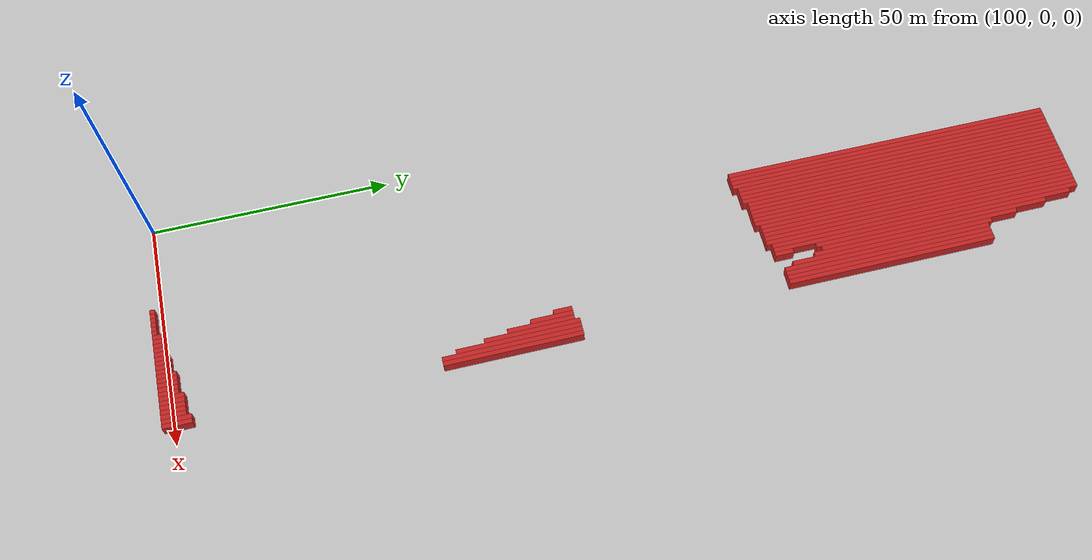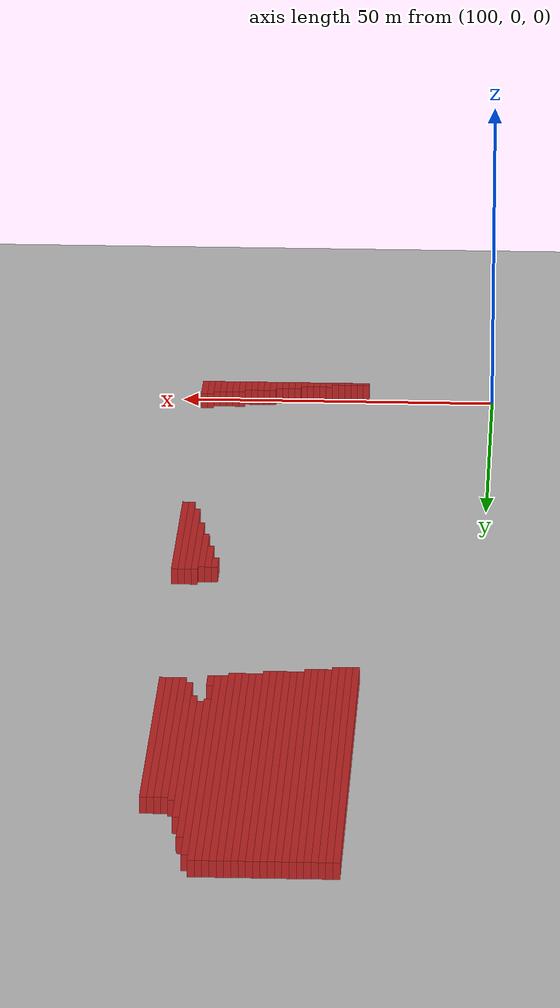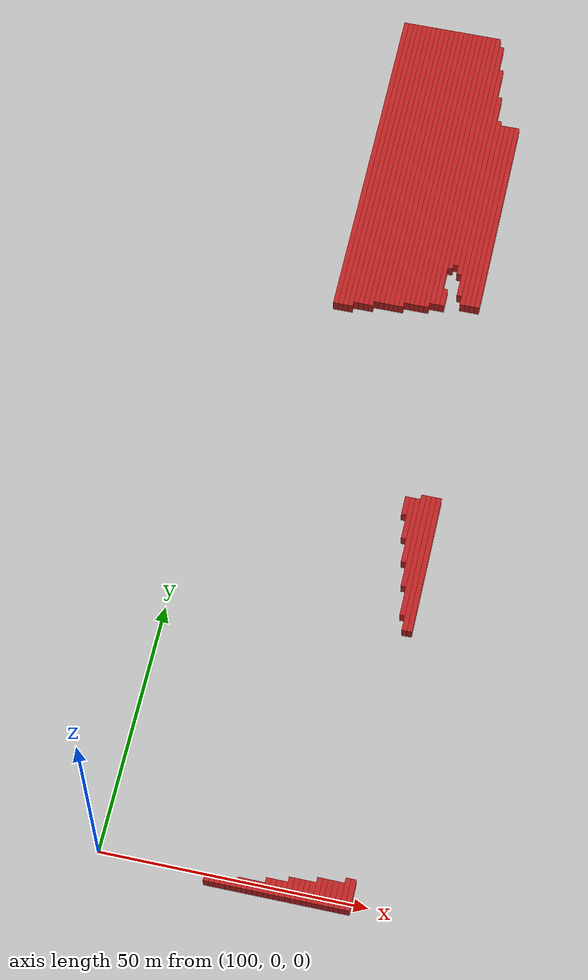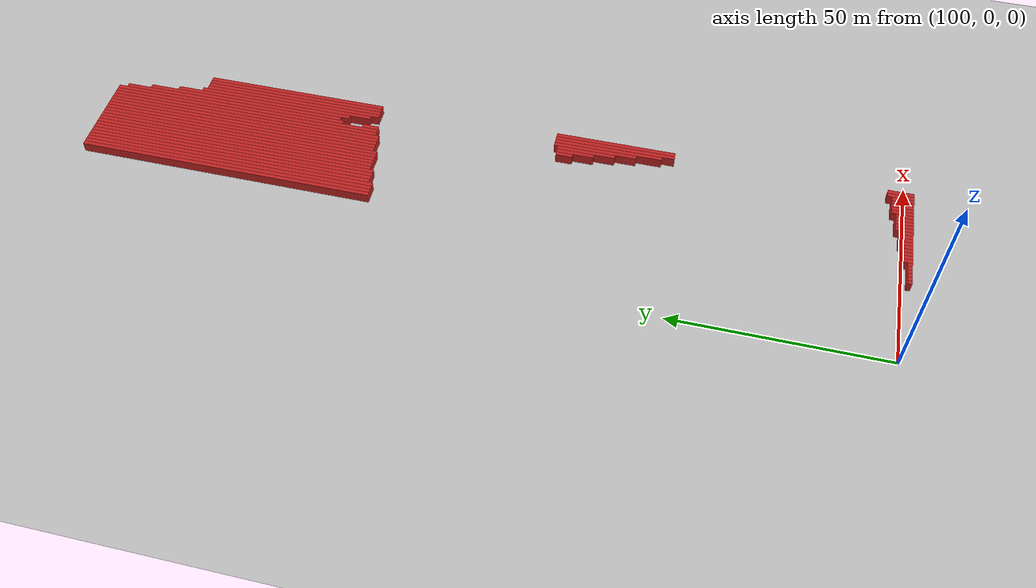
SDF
<sdf version="1.4">
 <world name="1_wall">
  <model name="ground_plane">
   <static>1</static>
   <link name="link">
    <collision name="collision">
     <geometry><plane><normal>0 0 1</normal><size>1000 1000</size></plane></geometry>
     <surface><friction><ode><mu>100</mu><mu2>50</mu2></ode></friction></surface>
    </collision>
    <visual name="visual">
     <cast_shadows>0</cast_shadows>
     <geometry><plane><normal>0 0 1</normal><size>10000 10000</size></plane></geometry>
     <material>
      <script><uri>file://media/materials/scripts/gazebo.material</uri><name>Gazebo/Grey</name></script>
     </material>
    </visual>
    <velocity_decay><linear>0</linear><angular>0</angular></velocity_decay>
   </link>
  </model>
  <model name="Wall_192">
   <static>1</static>
   <link name="Wall_192">
    <collision name="Wall_Collision_192">
     <geometry><box><size>72.0 1.0 2.5</size></box></geometry>
     <pose>0 0 1.25 0 -0 0</pose>
    </collision>
    <visual name="Wall_Visual_192">
     <pose>0 0 1.25 0 -0 0</pose>
     <geometry><box><size>72.0 1.0 2.5</size></box></geometry>
     <material>
      <script><uri>file://media/materials/scripts/gazebo.material</uri><name>Gazebo/Red</name></script>
     </material>
    </visual>
    <velocity_decay><linear>0</linear><angular>0</angular></velocity_decay>
    <pose>117.5 158.0 0 0 0 1.5707963267948966</pose>
   </link>
  </model>
  <model name="Wall_193">
   <static>1</static>
   <link name="Wall_193">
    <collision name="Wall_Collision_193">
     <geometry><box><size>72.0 1.0 2.5</size></box></geometry>
     <pose>0 0 1.25 0 -0 0</pose>
    </collision>
    <visual name="Wall_Visual_193">
     <pose>0 0 1.25 0 -0 0</pose>
     <geometry><box><size>72.0 1.0 2.5</size></box></geometry>
     <material>
      <script><uri>file://media/materials/scripts/gazebo.material</uri><name>Gazebo/Red</name></script>
     </material>
    </visual>
    <velocity_decay><linear>0</linear><angular>0</angular></velocity_decay>
    <pose>118.5 158.0 0 0 0 1.5707963267948966</pose>
   </link>
  </model>
  <model name="Wall_194">
   <static>1</static>
   <link name="Wall_194">
    <collision name="Wall_Collision_194">
     <geometry><box><size>72.0 1.0 2.5</size></box></geometry>
     <pose>0 0 1.25 0 -0 0</pose>
    </collision>
    <visual name="Wall_Visual_194">
     <pose>0 0 1.25 0 -0 0</pose>
     <geometry><box><size>72.0 1.0 2.5</size></box></geometry>
     <material>
      <script><uri>file://media/materials/scripts/gazebo.material</uri><name>Gazebo/Red</name></script>
     </material>
    </visual>
    <velocity_decay><linear>0</linear><angular>0</angular></velocity_decay>
    <pose>119.5 158.0 0 0 0 1.5707963267948966</pose>
   </link>
  </model>
  <model name="Wall_195">
   <static>1</static>
   <link name="Wall_195">
    <collision name="Wall_Collision_195">
     <geometry><box><size>1.0 1.0 2.5</size></box></geometry>
     <pose>0 0 1.25 0 -0 0</pose>
    </collision>
    <visual name="Wall_Visual_195">
     <pose>0 0 1.25 0 -0 0</pose>
     <geometry><box><size>1.0 1.0 2.5</size></box></geometry>
     <material>
      <script><uri>file://media/materials/scripts/gazebo.material</uri><name>Gazebo/Red</name></script>
     </material>
    </visual>
    <velocity_decay><linear>0</linear><angular>0</angular></velocity_decay>
    <pose>120.5 -1.5 0 0 0 1.5707963267948966</pose>
   </link>
  </model>
  <model name="Wall_196">
   <static>1</static>
   <link name="Wall_196">
    <collision name="Wall_Collision_196">
     <geometry><box><size>72.0 1.0 2.5</size></box></geometry>
     <pose>0 0 1.25 0 -0 0</pose>
    </collision>
    <visual name="Wall_Visual_196">
     <pose>0 0 1.25 0 -0 0</pose>
     <geometry><box><size>72.0 1.0 2.5</size></box></geometry>
     <material>
      <script><uri>file://media/materials/scripts/gazebo.material</uri><name>Gazebo/Red</name></script>
     </material>
    </visual>
    <velocity_decay><linear>0</linear><angular>0</angular></velocity_decay>
    <pose>120.5 158.0 0 0 0 1.5707963267948966</pose>
   </link>
  </model>
  <model name="Wall_197">
   <static>1</static>
   <link name="Wall_197">
    <collision name="Wall_Collision_197">
     <geometry><box><size>1.0 1.0 2.5</size></box></geometry>
     <pose>0 0 1.25 0 -0 0</pose>
    </collision>
    <visual name="Wall_Visual_197">
     <pose>0 0 1.25 0 -0 0</pose>
     <geometry><box><size>1.0 1.0 2.5</size></box></geometry>
     <material>
      <script><uri>file://media/materials/scripts/gazebo.material</uri><name>Gazebo/Red</name></script>
     </material>
    </visual>
    <velocity_decay><linear>0</linear><angular>0</angular></velocity_decay>
    <pose>121.5 -1.5 0 0 0 1.5707963267948966</pose>
   </link>
  </model>
  <model name="Wall_198">
   <static>1</static>
   <link name="Wall_198">
    <collision name="Wall_Collision_198">
     <geometry><box><size>71.0 1.0 2.5</size></box></geometry>
     <pose>0 0 1.25 0 -0 0</pose>
    </collision>
    <visual name="Wall_Visual_198">
     <pose>0 0 1.25 0 -0 0</pose>
     <geometry><box><size>71.0 1.0 2.5</size></box></geometry>
     <material>
      <script><uri>file://media/materials/scripts/gazebo.material</uri><name>Gazebo/Red</name></script>
     </material>
    </visual>
    <velocity_decay><linear>0</linear><angular>0</angular></velocity_decay>
    <pose>121.5 158.5 0 0 0 1.5707963267948966</pose>
   </link>
  </model>
  <model name="Wall_199">
   <static>1</static>
   <link name="Wall_199">
    <collision name="Wall_Collision_199">
     <geometry><box><size>1.0 1.0 2.5</size></box></geometry>
     <pose>0 0 1.25 0 -0 0</pose>
    </collision>
    <visual name="Wall_Visual_199">
     <pose>0 0 1.25 0 -0 0</pose>
     <geometry><box><size>1.0 1.0 2.5</size></box></geometry>
     <material>
      <script><uri>file://media/materials/scripts/gazebo.material</uri><name>Gazebo/Red</name></script>
     </material>
    </visual>
    <velocity_decay><linear>0</linear><angular>0</angular></velocity_decay>
    <pose>122.5 -1.5 0 0 0 1.5707963267948966</pose>
   </link>
  </model>
  <model name="Wall_200">
   <static>1</static>
   <link name="Wall_200">
    <collision name="Wall_Collision_200">
     <geometry><box><size>71.0 1.0 2.5</size></box></geometry>
     <pose>0 0 1.25 0 -0 0</pose>
    </collision>
    <visual name="Wall_Visual_200">
     <pose>0 0 1.25 0 -0 0</pose>
     <geometry><box><size>71.0 1.0 2.5</size></box></geometry>
     <material>
      <script><uri>file://media/materials/scripts/gazebo.material</uri><name>Gazebo/Red</name></script>
     </material>
    </visual>
    <velocity_decay><linear>0</linear><angular>0</angular></velocity_decay>
    <pose>122.5 158.5 0 0 0 1.5707963267948966</pose>
   </link>
  </model>
  <model name="Wall_201">
   <static>1</static>
   <link name="Wall_201">
    <collision name="Wall_Collision_201">
     <geometry><box><size>1.0 1.0 2.5</size></box></geometry>
     <pose>0 0 1.25 0 -0 0</pose>
    </collision>
    <visual name="Wall_Visual_201">
     <pose>0 0 1.25 0 -0 0</pose>
     <geometry><box><size>1.0 1.0 2.5</size></box></geometry>
     <material>
      <script><uri>file://media/materials/scripts/gazebo.material</uri><name>Gazebo/Red</name></script>
     </material>
    </visual>
    <velocity_decay><linear>0</linear><angular>0</angular></velocity_decay>
    <pose>123.5 -1.5 0 0 0 1.5707963267948966</pose>
   </link>
  </model>
  <model name="Wall_202">
   <static>1</static>
   <link name="Wall_202">
    <collision name="Wall_Collision_202">
     <geometry><box><size>71.0 1.0 2.5</size></box></geometry>
     <pose>0 0 1.25 0 -0 0</pose>
    </collision>
    <visual name="Wall_Visual_202">
     <pose>0 0 1.25 0 -0 0</pose>
     <geometry><box><size>71.0 1.0 2.5</size></box></geometry>
     <material>
      <script><uri>file://media/materials/scripts/gazebo.material</uri><name>Gazebo/Red</name></script>
     </material>
    </visual>
    <velocity_decay><linear>0</linear><angular>0</angular></velocity_decay>
    <pose>123.5 158.5 0 0 0 1.5707963267948966</pose>
   </link>
  </model>
  <model name="Wall_203">
   <static>1</static>
   <link name="Wall_203">
    <collision name="Wall_Collision_203">
     <geometry><box><size>1.0 1.0 2.5</size></box></geometry>
     <pose>0 0 1.25 0 -0 0</pose>
    </collision>
    <visual name="Wall_Visual_203">
     <pose>0 0 1.25 0 -0 0</pose>
     <geometry><box><size>1.0 1.0 2.5</size></box></geometry>
     <material>
      <script><uri>file://media/materials/scripts/gazebo.material</uri><name>Gazebo/Red</name></script>
     </material>
    </visual>
    <velocity_decay><linear>0</linear><angular>0</angular></velocity_decay>
    <pose>124.5 -1.5 0 0 0 1.5707963267948966</pose>
   </link>
  </model>
  <model name="Wall_204">
   <static>1</static>
   <link name="Wall_204">
    <collision name="Wall_Collision_204">
     <geometry><box><size>71.0 1.0 2.5</size></box></geometry>
     <pose>0 0 1.25 0 -0 0</pose>
    </collision>
    <visual name="Wall_Visual_204">
     <pose>0 0 1.25 0 -0 0</pose>
     <geometry><box><size>71.0 1.0 2.5</size></box></geometry>
     <material>
      <script><uri>file://media/materials/scripts/gazebo.material</uri><name>Gazebo/Red</name></script>
     </material>
    </visual>
    <velocity_decay><linear>0</linear><angular>0</angular></velocity_decay>
    <pose>124.5 158.5 0 0 0 1.5707963267948966</pose>
   </link>
  </model>
  <model name="Wall_205">
   <static>1</static>
   <link name="Wall_205">
    <collision name="Wall_Collision_205">
     <geometry><box><size>1.0 1.0 2.5</size></box></geometry>
     <pose>0 0 1.25 0 -0 0</pose>
    </collision>
    <visual name="Wall_Visual_205">
     <pose>0 0 1.25 0 -0 0</pose>
     <geometry><box><size>1.0 1.0 2.5</size></box></geometry>
     <material>
      <script><uri>file://media/materials/scripts/gazebo.material</uri><name>Gazebo/Red</name></script>
     </material>
    </visual>
    <velocity_decay><linear>0</linear><angular>0</angular></velocity_decay>
    <pose>125.5 -1.5 0 0 0 1.5707963267948966</pose>
   </link>
  </model>
  <model name="Wall_206">
   <static>1</static>
   <link name="Wall_206">
    <collision name="Wall_Collision_206">
     <geometry><box><size>70.0 1.0 2.5</size></box></geometry>
     <pose>0 0 1.25 0 -0 0</pose>
    </collision>
    <visual name="Wall_Visual_206">
     <pose>0 0 1.25 0 -0 0</pose>
     <geometry><box><size>70.0 1.0 2.5</size></box></geometry>
     <material>
      <script><uri>file://media/materials/scripts/gazebo.material</uri><name>Gazebo/Red</name></script>
     </material>
    </visual>
    <velocity_decay><linear>0</linear><angular>0</angular></velocity_decay>
    <pose>125.5 159.0 0 0 0 1.5707963267948966</pose>
   </link>
  </model>
  <model name="Wall_207">
   <static>1</static>
   <link name="Wall_207">
    <collision name="Wall_Collision_207">
     <geometry><box><size>2.0 1.0 2.5</size></box></geometry>
     <pose>0 0 1.25 0 -0 0</pose>
    </collision>
    <visual name="Wall_Visual_207">
     <pose>0 0 1.25 0 -0 0</pose>
     <geometry><box><size>2.0 1.0 2.5</size></box></geometry>
     <material>
      <script><uri>file://media/materials/scripts/gazebo.material</uri><name>Gazebo/Red</name></script>
     </material>
    </visual>
    <velocity_decay><linear>0</linear><angular>0</angular></velocity_decay>
    <pose>126.5 -1.0 0 0 0 1.5707963267948966</pose>
   </link>
  </model>
  <model name="Wall_208">
   <static>1</static>
   <link name="Wall_208">
    <collision name="Wall_Collision_208">
     <geometry><box><size>70.0 1.0 2.5</size></box></geometry>
     <pose>0 0 1.25 0 -0 0</pose>
    </collision>
    <visual name="Wall_Visual_208">
     <pose>0 0 1.25 0 -0 0</pose>
     <geometry><box><size>70.0 1.0 2.5</size></box></geometry>
     <material>
      <script><uri>file://media/materials/scripts/gazebo.material</uri><name>Gazebo/Red</name></script>
     </material>
    </visual>
    <velocity_decay><linear>0</linear><angular>0</angular></velocity_decay>
    <pose>126.5 159.0 0 0 0 1.5707963267948966</pose>
   </link>
  </model>
  <model name="Wall_209">
   <static>1</static>
   <link name="Wall_209">
    <collision name="Wall_Collision_209">
     <geometry><box><size>2.0 1.0 2.5</size></box></geometry>
     <pose>0 0 1.25 0 -0 0</pose>
    </collision>
    <visual name="Wall_Visual_209">
     <pose>0 0 1.25 0 -0 0</pose>
     <geometry><box><size>2.0 1.0 2.5</size></box></geometry>
     <material>
      <script><uri>file://media/materials/scripts/gazebo.material</uri><name>Gazebo/Red</name></script>
     </material>
    </visual>
    <velocity_decay><linear>0</linear><angular>0</angular></velocity_decay>
    <pose>127.5 -1.0 0 0 0 1.5707963267948966</pose>
   </link>
  </model>
  <model name="Wall_210">
   <static>1</static>
   <link name="Wall_210">
    <collision name="Wall_Collision_210">
     <geometry><box><size>70.0 1.0 2.5</size></box></geometry>
     <pose>0 0 1.25 0 -0 0</pose>
    </collision>
    <visual name="Wall_Visual_210">
     <pose>0 0 1.25 0 -0 0</pose>
     <geometry><box><size>70.0 1.0 2.5</size></box></geometry>
     <material>
      <script><uri>file://media/materials/scripts/gazebo.material</uri><name>Gazebo/Red</name></script>
     </material>
    </visual>
    <velocity_decay><linear>0</linear><angular>0</angular></velocity_decay>
    <pose>127.5 159.0 0 0 0 1.5707963267948966</pose>
   </link>
  </model>
  <model name="Wall_211">
   <static>1</static>
   <link name="Wall_211">
    <collision name="Wall_Collision_211">
     <geometry><box><size>2.0 1.0 2.5</size></box></geometry>
     <pose>0 0 1.25 0 -0 0</pose>
    </collision>
    <visual name="Wall_Visual_211">
     <pose>0 0 1.25 0 -0 0</pose>
     <geometry><box><size>2.0 1.0 2.5</size></box></geometry>
     <material>
      <script><uri>file://media/materials/scripts/gazebo.material</uri><name>Gazebo/Red</name></script>
     </material>
    </visual>
    <velocity_decay><linear>0</linear><angular>0</angular></velocity_decay>
    <pose>128.5 -1.0 0 0 0 1.5707963267948966</pose>
   </link>
  </model>
  <model name="Wall_212">
   <static>1</static>
   <link name="Wall_212">
    <collision name="Wall_Collision_212">
     <geometry><box><size>70.0 1.0 2.5</size></box></geometry>
     <pose>0 0 1.25 0 -0 0</pose>
    </collision>
    <visual name="Wall_Visual_212">
     <pose>0 0 1.25 0 -0 0</pose>
     <geometry><box><size>70.0 1.0 2.5</size></box></geometry>
     <material>
      <script><uri>file://media/materials/scripts/gazebo.material</uri><name>Gazebo/Red</name></script>
     </material>
    </visual>
    <velocity_decay><linear>0</linear><angular>0</angular></velocity_decay>
    <pose>128.5 159.0 0 0 0 1.5707963267948966</pose>
   </link>
  </model>
  <model name="Wall_213">
   <static>1</static>
   <link name="Wall_213">
    <collision name="Wall_Collision_213">
     <geometry><box><size>2.0 1.0 2.5</size></box></geometry>
     <pose>0 0 1.25 0 -0 0</pose>
    </collision>
    <visual name="Wall_Visual_213">
     <pose>0 0 1.25 0 -0 0</pose>
     <geometry><box><size>2.0 1.0 2.5</size></box></geometry>
     <material>
      <script><uri>file://media/materials/scripts/gazebo.material</uri><name>Gazebo/Red</name></script>
     </material>
    </visual>
    <velocity_decay><linear>0</linear><angular>0</angular></velocity_decay>
    <pose>129.5 -1.0 0 0 0 1.5707963267948966</pose>
   </link>
  </model>
  <model name="Wall_214">
   <static>1</static>
   <link name="Wall_214">
    <collision name="Wall_Collision_214">
     <geometry><box><size>70.0 1.0 2.5</size></box></geometry>
     <pose>0 0 1.25 0 -0 0</pose>
    </collision>
    <visual name="Wall_Visual_214">
     <pose>0 0 1.25 0 -0 0</pose>
     <geometry><box><size>70.0 1.0 2.5</size></box></geometry>
     <material>
      <script><uri>file://media/materials/scripts/gazebo.material</uri><name>Gazebo/Red</name></script>
     </material>
    </visual>
    <velocity_decay><linear>0</linear><angular>0</angular></velocity_decay>
    <pose>129.5 159.0 0 0 0 1.5707963267948966</pose>
   </link>
  </model>
  <model name="Wall_215">
   <static>1</static>
   <link name="Wall_215">
    <collision name="Wall_Collision_215">
     <geometry><box><size>2.0 1.0 2.5</size></box></geometry>
     <pose>0 0 1.25 0 -0 0</pose>
    </collision>
    <visual name="Wall_Visual_215">
     <pose>0 0 1.25 0 -0 0</pose>
     <geometry><box><size>2.0 1.0 2.5</size></box></geometry>
     <material>
      <script><uri>file://media/materials/scripts/gazebo.material</uri><name>Gazebo/Red</name></script>
     </material>
    </visual>
    <velocity_decay><linear>0</linear><angular>0</angular></velocity_decay>
    <pose>130.5 -1.0 0 0 0 1.5707963267948966</pose>
   </link>
  </model>
  <model name="Wall_216">
   <static>1</static>
   <link name="Wall_216">
    <collision name="Wall_Collision_216">
     <geometry><box><size>70.0 1.0 2.5</size></box></geometry>
     <pose>0 0 1.25 0 -0 0</pose>
    </collision>
    <visual name="Wall_Visual_216">
     <pose>0 0 1.25 0 -0 0</pose>
     <geometry><box><size>70.0 1.0 2.5</size></box></geometry>
     <material>
      <script><uri>file://media/materials/scripts/gazebo.material</uri><name>Gazebo/Red</name></script>
     </material>
    </visual>
    <velocity_decay><linear>0</linear><angular>0</angular></velocity_decay>
    <pose>130.5 159.0 0 0 0 1.5707963267948966</pose>
   </link>
  </model>
  <model name="Wall_217">
   <static>1</static>
   <link name="Wall_217">
    <collision name="Wall_Collision_217">
     <geometry><box><size>3.0 1.0 2.5</size></box></geometry>
     <pose>0 0 1.25 0 -0 0</pose>
    </collision>
    <visual name="Wall_Visual_217">
     <pose>0 0 1.25 0 -0 0</pose>
     <geometry><box><size>3.0 1.0 2.5</size></box></geometry>
     <material>
      <script><uri>file://media/materials/scripts/gazebo.material</uri><name>Gazebo/Red</name></script>
     </material>
    </visual>
    <velocity_decay><linear>0</linear><angular>0</angular></velocity_decay>
    <pose>131.5 -0.5 0 0 0 1.5707963267948966</pose>
   </link>
  </model>
  <model name="Wall_218">
   <static>1</static>
   <link name="Wall_218">
    <collision name="Wall_Collision_218">
     <geometry><box><size>69.0 1.0 2.5</size></box></geometry>
     <pose>0 0 1.25 0 -0 0</pose>
    </collision>
    <visual name="Wall_Visual_218">
     <pose>0 0 1.25 0 -0 0</pose>
     <geometry><box><size>69.0 1.0 2.5</size></box></geometry>
     <material>
      <script><uri>file://media/materials/scripts/gazebo.material</uri><name>Gazebo/Red</name></script>
     </material>
    </visual>
    <velocity_decay><linear>0</linear><angular>0</angular></velocity_decay>
    <pose>131.5 159.5 0 0 0 1.5707963267948966</pose>
   </link>
  </model>
  <model name="Wall_219">
   <static>1</static>
   <link name="Wall_219">
    <collision name="Wall_Collision_219">
     <geometry><box><size>3.0 1.0 2.5</size></box></geometry>
     <pose>0 0 1.25 0 -0 0</pose>
    </collision>
    <visual name="Wall_Visual_219">
     <pose>0 0 1.25 0 -0 0</pose>
     <geometry><box><size>3.0 1.0 2.5</size></box></geometry>
     <material>
      <script><uri>file://media/materials/scripts/gazebo.material</uri><name>Gazebo/Red</name></script>
     </material>
    </visual>
    <velocity_decay><linear>0</linear><angular>0</angular></velocity_decay>
    <pose>132.5 -0.5 0 0 0 1.5707963267948966</pose>
   </link>
  </model>
  <model name="Wall_220">
   <static>1</static>
   <link name="Wall_220">
    <collision name="Wall_Collision_220">
     <geometry><box><size>69.0 1.0 2.5</size></box></geometry>
     <pose>0 0 1.25 0 -0 0</pose>
    </collision>
    <visual name="Wall_Visual_220">
     <pose>0 0 1.25 0 -0 0</pose>
     <geometry><box><size>69.0 1.0 2.5</size></box></geometry>
     <material>
      <script><uri>file://media/materials/scripts/gazebo.material</uri><name>Gazebo/Red</name></script>
     </material>
    </visual>
    <velocity_decay><linear>0</linear><angular>0</angular></velocity_decay>
    <pose>132.5 159.5 0 0 0 1.5707963267948966</pose>
   </link>
  </model>
  <model name="Wall_221">
   <static>1</static>
   <link name="Wall_221">
    <collision name="Wall_Collision_221">
     <geometry><box><size>3.0 1.0 2.5</size></box></geometry>
     <pose>0 0 1.25 0 -0 0</pose>
    </collision>
    <visual name="Wall_Visual_221">
     <pose>0 0 1.25 0 -0 0</pose>
     <geometry><box><size>3.0 1.0 2.5</size></box></geometry>
     <material>
      <script><uri>file://media/materials/scripts/gazebo.material</uri><name>Gazebo/Red</name></script>
     </material>
    </visual>
    <velocity_decay><linear>0</linear><angular>0</angular></velocity_decay>
    <pose>133.5 -0.5 0 0 0 1.5707963267948966</pose>
   </link>
  </model>
  <model name="Wall_222">
   <static>1</static>
   <link name="Wall_222">
    <collision name="Wall_Collision_222">
     <geometry><box><size>69.0 1.0 2.5</size></box></geometry>
     <pose>0 0 1.25 0 -0 0</pose>
    </collision>
    <visual name="Wall_Visual_222">
     <pose>0 0 1.25 0 -0 0</pose>
     <geometry><box><size>69.0 1.0 2.5</size></box></geometry>
     <material>
      <script><uri>file://media/materials/scripts/gazebo.material</uri><name>Gazebo/Red</name></script>
     </material>
    </visual>
    <velocity_decay><linear>0</linear><angular>0</angular></velocity_decay>
    <pose>133.5 159.5 0 0 0 1.5707963267948966</pose>
   </link>
  </model>
  <model name="Wall_223">
   <static>1</static>
   <link name="Wall_223">
    <collision name="Wall_Collision_223">
     <geometry><box><size>3.0 1.0 2.5</size></box></geometry>
     <pose>0 0 1.25 0 -0 0</pose>
    </collision>
    <visual name="Wall_Visual_223">
     <pose>0 0 1.25 0 -0 0</pose>
     <geometry><box><size>3.0 1.0 2.5</size></box></geometry>
     <material>
      <script><uri>file://media/materials/scripts/gazebo.material</uri><name>Gazebo/Red</name></script>
     </material>
    </visual>
    <velocity_decay><linear>0</linear><angular>0</angular></velocity_decay>
    <pose>134.5 -0.5 0 0 0 1.5707963267948966</pose>
   </link>
  </model>
  <model name="Wall_224">
   <static>1</static>
   <link name="Wall_224">
    <collision name="Wall_Collision_224">
     <geometry><box><size>69.0 1.0 2.5</size></box></geometry>
     <pose>0 0 1.25 0 -0 0</pose>
    </collision>
    <visual name="Wall_Visual_224">
     <pose>0 0 1.25 0 -0 0</pose>
     <geometry><box><size>69.0 1.0 2.5</size></box></geometry>
     <material>
      <script><uri>file://media/materials/scripts/gazebo.material</uri><name>Gazebo/Red</name></script>
     </material>
    </visual>
    <velocity_decay><linear>0</linear><angular>0</angular></velocity_decay>
    <pose>134.5 159.5 0 0 0 1.5707963267948966</pose>
   </link>
  </model>
  <model name="Wall_225">
   <static>1</static>
   <link name="Wall_225">
    <collision name="Wall_Collision_225">
     <geometry><box><size>4.0 1.0 2.5</size></box></geometry>
     <pose>0 0 1.25 0 -0 0</pose>
    </collision>
    <visual name="Wall_Visual_225">
     <pose>0 0 1.25 0 -0 0</pose>
     <geometry><box><size>4.0 1.0 2.5</size></box></geometry>
     <material>
      <script><uri>file://media/materials/scripts/gazebo.material</uri><name>Gazebo/Red</name></script>
     </material>
    </visual>
    <velocity_decay><linear>0</linear><angular>0</angular></velocity_decay>
    <pose>135.5 0.0 0 0 0 1.5707963267948966</pose>
   </link>
  </model>
  <model name="Wall_226">
   <static>1</static>
   <link name="Wall_226">
    <collision name="Wall_Collision_226">
     <geometry><box><size>69.0 1.0 2.5</size></box></geometry>
     <pose>0 0 1.25 0 -0 0</pose>
    </collision>
    <visual name="Wall_Visual_226">
     <pose>0 0 1.25 0 -0 0</pose>
     <geometry><box><size>69.0 1.0 2.5</size></box></geometry>
     <material>
      <script><uri>file://media/materials/scripts/gazebo.material</uri><name>Gazebo/Red</name></script>
     </material>
    </visual>
    <velocity_decay><linear>0</linear><angular>0</angular></velocity_decay>
    <pose>135.5 159.5 0 0 0 1.5707963267948966</pose>
   </link>
  </model>
  <model name="Wall_227">
   <static>1</static>
   <link name="Wall_227">
    <collision name="Wall_Collision_227">
     <geometry><box><size>4.0 1.0 2.5</size></box></geometry>
     <pose>0 0 1.25 0 -0 0</pose>
    </collision>
    <visual name="Wall_Visual_227">
     <pose>0 0 1.25 0 -0 0</pose>
     <geometry><box><size>4.0 1.0 2.5</size></box></geometry>
     <material>
      <script><uri>file://media/materials/scripts/gazebo.material</uri><name>Gazebo/Red</name></script>
     </material>
    </visual>
    <velocity_decay><linear>0</linear><angular>0</angular></velocity_decay>
    <pose>136.5 0.0 0 0 0 1.5707963267948966</pose>
   </link>
  </model>
  <model name="Wall_228">
   <static>1</static>
   <link name="Wall_228">
    <collision name="Wall_Collision_228">
     <geometry><box><size>68.0 1.0 2.5</size></box></geometry>
     <pose>0 0 1.25 0 -0 0</pose>
    </collision>
    <visual name="Wall_Visual_228">
     <pose>0 0 1.25 0 -0 0</pose>
     <geometry><box><size>68.0 1.0 2.5</size></box></geometry>
     <material>
      <script><uri>file://media/materials/scripts/gazebo.material</uri><name>Gazebo/Red</name></script>
     </material>
    </visual>
    <velocity_decay><linear>0</linear><angular>0</angular></velocity_decay>
    <pose>136.5 160.0 0 0 0 1.5707963267948966</pose>
   </link>
  </model>
  <model name="Wall_229">
   <static>1</static>
   <link name="Wall_229">
    <collision name="Wall_Collision_229">
     <geometry><box><size>4.0 1.0 2.5</size></box></geometry>
     <pose>0 0 1.25 0 -0 0</pose>
    </collision>
    <visual name="Wall_Visual_229">
     <pose>0 0 1.25 0 -0 0</pose>
     <geometry><box><size>4.0 1.0 2.5</size></box></geometry>
     <material>
      <script><uri>file://media/materials/scripts/gazebo.material</uri><name>Gazebo/Red</name></script>
     </material>
    </visual>
    <velocity_decay><linear>0</linear><angular>0</angular></velocity_decay>
    <pose>137.5 0.0 0 0 0 1.5707963267948966</pose>
   </link>
  </model>
  <model name="Wall_230">
   <static>1</static>
   <link name="Wall_230">
    <collision name="Wall_Collision_230">
     <geometry><box><size>68.0 1.0 2.5</size></box></geometry>
     <pose>0 0 1.25 0 -0 0</pose>
    </collision>
    <visual name="Wall_Visual_230">
     <pose>0 0 1.25 0 -0 0</pose>
     <geometry><box><size>68.0 1.0 2.5</size></box></geometry>
     <material>
      <script><uri>file://media/materials/scripts/gazebo.material</uri><name>Gazebo/Red</name></script>
     </material>
    </visual>
    <velocity_decay><linear>0</linear><angular>0</angular></velocity_decay>
    <pose>137.5 160.0 0 0 0 1.5707963267948966</pose>
   </link>
  </model>
  <model name="Wall_231">
   <static>1</static>
   <link name="Wall_231">
    <collision name="Wall_Collision_231">
     <geometry><box><size>4.0 1.0 2.5</size></box></geometry>
     <pose>0 0 1.25 0 -0 0</pose>
    </collision>
    <visual name="Wall_Visual_231">
     <pose>0 0 1.25 0 -0 0</pose>
     <geometry><box><size>4.0 1.0 2.5</size></box></geometry>
     <material>
      <script><uri>file://media/materials/scripts/gazebo.material</uri><name>Gazebo/Red</name></script>
     </material>
    </visual>
    <velocity_decay><linear>0</linear><angular>0</angular></velocity_decay>
    <pose>138.5 0.0 0 0 0 1.5707963267948966</pose>
   </link>
  </model>
  <model name="Wall_232">
   <static>1</static>
   <link name="Wall_232">
    <collision name="Wall_Collision_232">
     <geometry><box><size>4.0 1.0 2.5</size></box></geometry>
     <pose>0 0 1.25 0 -0 0</pose>
    </collision>
    <visual name="Wall_Visual_232">
     <pose>0 0 1.25 0 -0 0</pose>
     <geometry><box><size>4.0 1.0 2.5</size></box></geometry>
     <material>
      <script><uri>file://media/materials/scripts/gazebo.material</uri><name>Gazebo/Red</name></script>
     </material>
    </visual>
    <velocity_decay><linear>0</linear><angular>0</angular></velocity_decay>
    <pose>138.5 128.0 0 0 0 1.5707963267948966</pose>
   </link>
  </model>
  <model name="Wall_233">
   <static>1</static>
   <link name="Wall_233">
    <collision name="Wall_Collision_233">
     <geometry><box><size>57.0 1.0 2.5</size></box></geometry>
     <pose>0 0 1.25 0 -0 0</pose>
    </collision>
    <visual name="Wall_Visual_233">
     <pose>0 0 1.25 0 -0 0</pose>
     <geometry><box><size>57.0 1.0 2.5</size></box></geometry>
     <material>
      <script><uri>file://media/materials/scripts/gazebo.material</uri><name>Gazebo/Red</name></script>
     </material>
    </visual>
    <velocity_decay><linear>0</linear><angular>0</angular></velocity_decay>
    <pose>138.5 163.5 0 0 0 1.5707963267948966</pose>
   </link>
  </model>
  <model name="Wall_234">
   <static>1</static>
   <link name="Wall_234">
    <collision name="Wall_Collision_234">
     <geometry><box><size>4.0 1.0 2.5</size></box></geometry>
     <pose>0 0 1.25 0 -0 0</pose>
    </collision>
    <visual name="Wall_Visual_234">
     <pose>0 0 1.25 0 -0 0</pose>
     <geometry><box><size>4.0 1.0 2.5</size></box></geometry>
     <material>
      <script><uri>file://media/materials/scripts/gazebo.material</uri><name>Gazebo/Red</name></script>
     </material>
    </visual>
    <velocity_decay><linear>0</linear><angular>0</angular></velocity_decay>
    <pose>139.5 0.0 0 0 0 1.5707963267948966</pose>
   </link>
  </model>
  <model name="Wall_235">
   <static>1</static>
   <link name="Wall_235">
    <collision name="Wall_Collision_235">
     <geometry><box><size>50.0 1.0 2.5</size></box></geometry>
     <pose>0 0 1.25 0 -0 0</pose>
    </collision>
    <visual name="Wall_Visual_235">
     <pose>0 0 1.25 0 -0 0</pose>
     <geometry><box><size>50.0 1.0 2.5</size></box></geometry>
     <material>
      <script><uri>file://media/materials/scripts/gazebo.material</uri><name>Gazebo/Red</name></script>
     </material>
    </visual>
    <velocity_decay><linear>0</linear><angular>0</angular></velocity_decay>
    <pose>139.5 161.0 0 0 0 1.5707963267948966</pose>
   </link>
  </model>
  <model name="Wall_236">
   <static>1</static>
   <link name="Wall_236">
    <collision name="Wall_Collision_236">
     <geometry><box><size>5.0 1.0 2.5</size></box></geometry>
     <pose>0 0 1.25 0 -0 0</pose>
    </collision>
    <visual name="Wall_Visual_236">
     <pose>0 0 1.25 0 -0 0</pose>
     <geometry><box><size>5.0 1.0 2.5</size></box></geometry>
     <material>
      <script><uri>file://media/materials/scripts/gazebo.material</uri><name>Gazebo/Red</name></script>
     </material>
    </visual>
    <velocity_decay><linear>0</linear><angular>0</angular></velocity_decay>
    <pose>140.5 0.5 0 0 0 1.5707963267948966</pose>
   </link>
  </model>
  <model name="Wall_237">
   <static>1</static>
   <link name="Wall_237">
    <collision name="Wall_Collision_237">
     <geometry><box><size>4.0 1.0 2.5</size></box></geometry>
     <pose>0 0 1.25 0 -0 0</pose>
    </collision>
    <visual name="Wall_Visual_237">
     <pose>0 0 1.25 0 -0 0</pose>
     <geometry><box><size>4.0 1.0 2.5</size></box></geometry>
     <material>
      <script><uri>file://media/materials/scripts/gazebo.material</uri><name>Gazebo/Red</name></script>
     </material>
    </visual>
    <velocity_decay><linear>0</linear><angular>0</angular></velocity_decay>
    <pose>140.5 80.0 0 0 0 1.5707963267948966</pose>
   </link>
  </model>
  <model name="Wall_238">
   <static>1</static>
   <link name="Wall_238">
    <collision name="Wall_Collision_238">
     <geometry><box><size>45.0 1.0 2.5</size></box></geometry>
     <pose>0 0 1.25 0 -0 0</pose>
    </collision>
    <visual name="Wall_Visual_238">
     <pose>0 0 1.25 0 -0 0</pose>
     <geometry><box><size>45.0 1.0 2.5</size></box></geometry>
     <material>
      <script><uri>file://media/materials/scripts/gazebo.material</uri><name>Gazebo/Red</name></script>
     </material>
    </visual>
    <velocity_decay><linear>0</linear><angular>0</angular></velocity_decay>
    <pose>140.5 156.5 0 0 0 1.5707963267948966</pose>
   </link>
  </model>
  <model name="Wall_239">
   <static>1</static>
   <link name="Wall_239">
    <collision name="Wall_Collision_239">
     <geometry><box><size>5.0 1.0 2.5</size></box></geometry>
     <pose>0 0 1.25 0 -0 0</pose>
    </collision>
    <visual name="Wall_Visual_239">
     <pose>0 0 1.25 0 -0 0</pose>
     <geometry><box><size>5.0 1.0 2.5</size></box></geometry>
     <material>
      <script><uri>file://media/materials/scripts/gazebo.material</uri><name>Gazebo/Red</name></script>
     </material>
    </visual>
    <velocity_decay><linear>0</linear><angular>0</angular></velocity_decay>
    <pose>141.5 0.5 0 0 0 1.5707963267948966</pose>
   </link>
  </model>
  <model name="Wall_240">
   <static>1</static>
   <link name="Wall_240">
    <collision name="Wall_Collision_240">
     <geometry><box><size>9.0 1.0 2.5</size></box></geometry>
     <pose>0 0 1.25 0 -0 0</pose>
    </collision>
    <visual name="Wall_Visual_240">
     <pose>0 0 1.25 0 -0 0</pose>
     <geometry><box><size>9.0 1.0 2.5</size></box></geometry>
     <material>
      <script><uri>file://media/materials/scripts/gazebo.material</uri><name>Gazebo/Red</name></script>
     </material>
    </visual>
    <velocity_decay><linear>0</linear><angular>0</angular></velocity_decay>
    <pose>141.5 77.5 0 0 0 1.5707963267948966</pose>
   </link>
  </model>
  <model name="Wall_241">
   <static>1</static>
   <link name="Wall_241">
    <collision name="Wall_Collision_241">
     <geometry><box><size>44.0 1.0 2.5</size></box></geometry>
     <pose>0 0 1.25 0 -0 0</pose>
    </collision>
    <visual name="Wall_Visual_241">
     <pose>0 0 1.25 0 -0 0</pose>
     <geometry><box><size>44.0 1.0 2.5</size></box></geometry>
     <material>
      <script><uri>file://media/materials/scripts/gazebo.material</uri><name>Gazebo/Red</name></script>
     </material>
    </visual>
    <velocity_decay><linear>0</linear><angular>0</angular></velocity_decay>
    <pose>141.5 151.0 0 0 0 1.5707963267948966</pose>
   </link>
  </model>
  <model name="Wall_242">
   <static>1</static>
   <link name="Wall_242">
    <collision name="Wall_Collision_242">
     <geometry><box><size>5.0 1.0 2.5</size></box></geometry>
     <pose>0 0 1.25 0 -0 0</pose>
    </collision>
    <visual name="Wall_Visual_242">
     <pose>0 0 1.25 0 -0 0</pose>
     <geometry><box><size>5.0 1.0 2.5</size></box></geometry>
     <material>
      <script><uri>file://media/materials/scripts/gazebo.material</uri><name>Gazebo/Red</name></script>
     </material>
    </visual>
    <velocity_decay><linear>0</linear><angular>0</angular></velocity_decay>
    <pose>142.5 0.5 0 0 0 1.5707963267948966</pose>
   </link>
  </model>
  <model name="Wall_243">
   <static>1</static>
   <link name="Wall_243">
    <collision name="Wall_Collision_243">
     <geometry><box><size>14.0 1.0 2.5</size></box></geometry>
     <pose>0 0 1.25 0 -0 0</pose>
    </collision>
    <visual name="Wall_Visual_243">
     <pose>0 0 1.25 0 -0 0</pose>
     <geometry><box><size>14.0 1.0 2.5</size></box></geometry>
     <material>
      <script><uri>file://media/materials/scripts/gazebo.material</uri><name>Gazebo/Red</name></script>
     </material>
    </visual>
    <velocity_decay><linear>0</linear><angular>0</angular></velocity_decay>
    <pose>142.5 75.0 0 0 0 1.5707963267948966</pose>
   </link>
  </model>
  <model name="Wall_244">
   <static>1</static>
   <link name="Wall_244">
    <collision name="Wall_Collision_244">
     <geometry><box><size>45.0 1.0 2.5</size></box></geometry>
     <pose>0 0 1.25 0 -0 0</pose>
    </collision>
    <visual name="Wall_Visual_244">
     <pose>0 0 1.25 0 -0 0</pose>
     <geometry><box><size>45.0 1.0 2.5</size></box></geometry>
     <material>
      <script><uri>file://media/materials/scripts/gazebo.material</uri><name>Gazebo/Red</name></script>
     </material>
    </visual>
    <velocity_decay><linear>0</linear><angular>0</angular></velocity_decay>
    <pose>142.5 149.5 0 0 0 1.5707963267948966</pose>
   </link>
  </model>
  <model name="Wall_245">
   <static>1</static>
   <link name="Wall_245">
    <collision name="Wall_Collision_245">
     <geometry><box><size>5.0 1.0 2.5</size></box></geometry>
     <pose>0 0 1.25 0 -0 0</pose>
    </collision>
    <visual name="Wall_Visual_245">
     <pose>0 0 1.25 0 -0 0</pose>
     <geometry><box><size>5.0 1.0 2.5</size></box></geometry>
     <material>
      <script><uri>file://media/materials/scripts/gazebo.material</uri><name>Gazebo/Red</name></script>
     </material>
    </visual>
    <velocity_decay><linear>0</linear><angular>0</angular></velocity_decay>
    <pose>143.5 0.5 0 0 0 1.5707963267948966</pose>
   </link>
  </model>
  <model name="Wall_246">
   <static>1</static>
   <link name="Wall_246">
    <collision name="Wall_Collision_246">
     <geometry><box><size>20.0 1.0 2.5</size></box></geometry>
     <pose>0 0 1.25 0 -0 0</pose>
    </collision>
    <visual name="Wall_Visual_246">
     <pose>0 0 1.25 0 -0 0</pose>
     <geometry><box><size>20.0 1.0 2.5</size></box></geometry>
     <material>
      <script><uri>file://media/materials/scripts/gazebo.material</uri><name>Gazebo/Red</name></script>
     </material>
    </visual>
    <velocity_decay><linear>0</linear><angular>0</angular></velocity_decay>
    <pose>143.5 73.0 0 0 0 1.5707963267948966</pose>
   </link>
  </model>
  <model name="Wall_247">
   <static>1</static>
   <link name="Wall_247">
    <collision name="Wall_Collision_247">
     <geometry><box><size>45.0 1.0 2.5</size></box></geometry>
     <pose>0 0 1.25 0 -0 0</pose>
    </collision>
    <visual name="Wall_Visual_247">
     <pose>0 0 1.25 0 -0 0</pose>
     <geometry><box><size>45.0 1.0 2.5</size></box></geometry>
     <material>
      <script><uri>file://media/materials/scripts/gazebo.material</uri><name>Gazebo/Red</name></script>
     </material>
    </visual>
    <velocity_decay><linear>0</linear><angular>0</angular></velocity_decay>
    <pose>143.5 149.5 0 0 0 1.5707963267948966</pose>
   </link>
  </model>
  <model name="Wall_248">
   <static>1</static>
   <link name="Wall_248">
    <collision name="Wall_Collision_248">
     <geometry><box><size>5.0 1.0 2.5</size></box></geometry>
     <pose>0 0 1.25 0 -0 0</pose>
    </collision>
    <visual name="Wall_Visual_248">
     <pose>0 0 1.25 0 -0 0</pose>
     <geometry><box><size>5.0 1.0 2.5</size></box></geometry>
     <material>
      <script><uri>file://media/materials/scripts/gazebo.material</uri><name>Gazebo/Red</name></script>
     </material>
    </visual>
    <velocity_decay><linear>0</linear><angular>0</angular></velocity_decay>
    <pose>144.5 0.5 0 0 0 1.5707963267948966</pose>
   </link>
  </model>
  <model name="Wall_249">
   <static>1</static>
   <link name="Wall_249">
    <collision name="Wall_Collision_249">
     <geometry><box><size>26.0 1.0 2.5</size></box></geometry>
     <pose>0 0 1.25 0 -0 0</pose>
    </collision>
    <visual name="Wall_Visual_249">
     <pose>0 0 1.25 0 -0 0</pose>
     <geometry><box><size>26.0 1.0 2.5</size></box></geometry>
     <material>
      <script><uri>file://media/materials/scripts/gazebo.material</uri><name>Gazebo/Red</name></script>
     </material>
    </visual>
    <velocity_decay><linear>0</linear><angular>0</angular></velocity_decay>
    <pose>144.5 70.0 0 0 0 1.5707963267948966</pose>
   </link>
  </model>
  <model name="Wall_250">
   <static>1</static>
   <link name="Wall_250">
    <collision name="Wall_Collision_250">
     <geometry><box><size>45.0 1.0 2.5</size></box></geometry>
     <pose>0 0 1.25 0 -0 0</pose>
    </collision>
    <visual name="Wall_Visual_250">
     <pose>0 0 1.25 0 -0 0</pose>
     <geometry><box><size>45.0 1.0 2.5</size></box></geometry>
     <material>
      <script><uri>file://media/materials/scripts/gazebo.material</uri><name>Gazebo/Red</name></script>
     </material>
    </visual>
    <velocity_decay><linear>0</linear><angular>0</angular></velocity_decay>
    <pose>144.5 149.5 0 0 0 1.5707963267948966</pose>
   </link>
  </model>
  <model name="Wall_251">
   <static>1</static>
   <link name="Wall_251">
    <collision name="Wall_Collision_251">
     <geometry><box><size>6.0 1.0 2.5</size></box></geometry>
     <pose>0 0 1.25 0 -0 0</pose>
    </collision>
    <visual name="Wall_Visual_251">
     <pose>0 0 1.25 0 -0 0</pose>
     <geometry><box><size>6.0 1.0 2.5</size></box></geometry>
     <material>
      <script><uri>file://media/materials/scripts/gazebo.material</uri><name>Gazebo/Red</name></script>
     </material>
    </visual>
    <velocity_decay><linear>0</linear><angular>0</angular></velocity_decay>
    <pose>145.5 1.0 0 0 0 1.5707963267948966</pose>
   </link>
  </model>
  <model name="Wall_252">
   <static>1</static>
   <link name="Wall_252">
    <collision name="Wall_Collision_252">
     <geometry><box><size>29.0 1.0 2.5</size></box></geometry>
     <pose>0 0 1.25 0 -0 0</pose>
    </collision>
    <visual name="Wall_Visual_252">
     <pose>0 0 1.25 0 -0 0</pose>
     <geometry><box><size>29.0 1.0 2.5</size></box></geometry>
     <material>
      <script><uri>file://media/materials/scripts/gazebo.material</uri><name>Gazebo/Red</name></script>
     </material>
    </visual>
    <velocity_decay><linear>0</linear><angular>0</angular></velocity_decay>
    <pose>145.5 68.5 0 0 0 1.5707963267948966</pose>
   </link>
  </model>
  <model name="Wall_253">
   <static>1</static>
   <link name="Wall_253">
    <collision name="Wall_Collision_253">
     <geometry><box><size>45.0 1.0 2.5</size></box></geometry>
     <pose>0 0 1.25 0 -0 0</pose>
    </collision>
    <visual name="Wall_Visual_253">
     <pose>0 0 1.25 0 -0 0</pose>
     <geometry><box><size>45.0 1.0 2.5</size></box></geometry>
     <material>
      <script><uri>file://media/materials/scripts/gazebo.material</uri><name>Gazebo/Red</name></script>
     </material>
    </visual>
    <velocity_decay><linear>0</linear><angular>0</angular></velocity_decay>
    <pose>145.5 149.5 0 0 0 1.5707963267948966</pose>
   </link>
  </model>
  <model name="Wall_254">
   <static>1</static>
   <link name="Wall_254">
    <collision name="Wall_Collision_254">
     <geometry><box><size>6.0 1.0 2.5</size></box></geometry>
     <pose>0 0 1.25 0 -0 0</pose>
    </collision>
    <visual name="Wall_Visual_254">
     <pose>0 0 1.25 0 -0 0</pose>
     <geometry><box><size>6.0 1.0 2.5</size></box></geometry>
     <material>
      <script><uri>file://media/materials/scripts/gazebo.material</uri><name>Gazebo/Red</name></script>
     </material>
    </visual>
    <velocity_decay><linear>0</linear><angular>0</angular></velocity_decay>
    <pose>146.5 1.0 0 0 0 1.5707963267948966</pose>
   </link>
  </model>
  <model name="Wall_255">
   <static>1</static>
   <link name="Wall_255">
    <collision name="Wall_Collision_255">
     <geometry><box><size>29.0 1.0 2.5</size></box></geometry>
     <pose>0 0 1.25 0 -0 0</pose>
    </collision>
    <visual name="Wall_Visual_255">
     <pose>0 0 1.25 0 -0 0</pose>
     <geometry><box><size>29.0 1.0 2.5</size></box></geometry>
     <material>
      <script><uri>file://media/materials/scripts/gazebo.material</uri><name>Gazebo/Red</name></script>
     </material>
    </visual>
    <velocity_decay><linear>0</linear><angular>0</angular></velocity_decay>
    <pose>146.5 68.5 0 0 0 1.5707963267948966</pose>
   </link>
  </model>
 </world>
</sdf>
